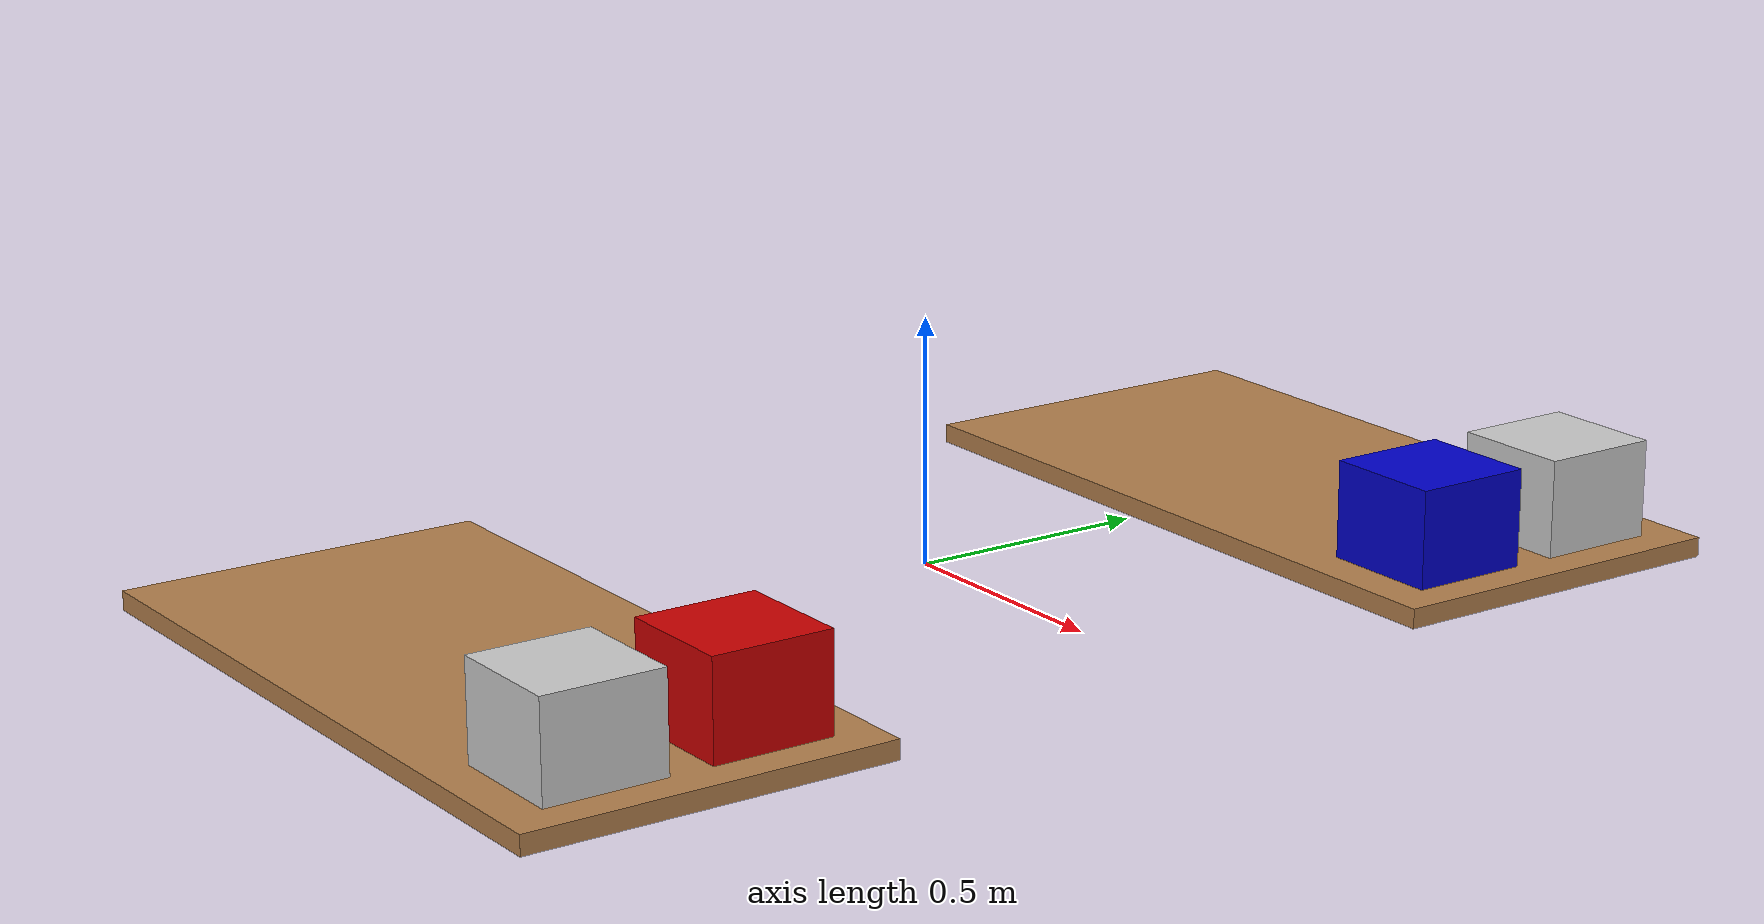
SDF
<?xml version="1.0" ?>
<sdf version="1.4">
  <world name="default">
    <include>
      <uri>model://sun</uri>
    </include>
    <gui>
        <camera name="user_camera">
          <pose>2.5 -1.64 2.18 0 .6 2.5</pose>
        </camera>
    </gui>
    <scene>
      <ambient>0.4 0.4 0.4 1</ambient>
      <background>0.7 0.7 0.7 1</background>
      <!-- modified (shadows) to reduce computation effort, default : true -->
      <shadows>false</shadows>
    </scene>

    <physics type="ode">
      <real_time_update_rate>1000</real_time_update_rate>
      <max_step_size>0.001</max_step_size>
     </physics>

     <model name='tableright'>
       <pose> 0 .978 0 0 0 0</pose>
       <link name='tabletop'>
         <self_collide>0</self_collide>
         <enable_wind>0</enable_wind>
         <kinematic>0</kinematic>
         <pose>0 0 0 0 -0 0</pose>
         <gravity>1</gravity>
         <inertial>
           <mass>1</mass>
           <pose>0 0 0 0 -0 0</pose>
           <inertia>
             <ixx>1</ixx>
             <ixy>0</ixy>
             <ixz>0</ixz>
             <iyy>1</iyy>
             <iyz>0</iyz>
             <izz>1</izz>
           </inertia>
         </inertial>
         <visual name='scoring'>
           <pose>.562 -.169 .1 0 0 0</pose>
           <geometry>
             <box>
               <size>.25 .25 .2</size>
             </box>
           </geometry>
           <material>
             <ambient>0 0 .8 1</ambient>
             <diffuse>0 0 .8 1</diffuse>
             <specular>0 0 .8 1</specular>
             <emissive>0 0 0 0</emissive>
           </material>
           <transparency>0</transparency>
           <cast_shadows>1</cast_shadows>
         </visual>
         <visual name='static'>
           <pose>.562 .169 .1 0 0 0</pose>
           <geometry>
             <box>
               <size>.25 .25 .2</size>
             </box>
           </geometry>
           <material>
             <ambient>.8 .8 .8 1</ambient>
             <diffuse>.8 .8 .8 1</diffuse>
             <specular>.8 .8 .8 1</specular>
             <emissive>0 0 0 0</emissive>
           </material>
           <transparency>0</transparency>
           <cast_shadows>1</cast_shadows>
         </visual>         <visual name='visual1'>
           <pose>0 0 -.02 0 0 0</pose>
           <geometry>
             <box>
               <size>1.524 0.762 0.04</size>
             </box>
           </geometry>
           <material>
             <script>
               <uri>file://media/materials/scripts/gazebo.material</uri>
               <name>Gazebo/Wood</name>
             </script>
             <shader type='pixel'>
               <normal_map>__default__</normal_map>
             </shader>
           </material>
           <transparency>0</transparency>
           <cast_shadows>1</cast_shadows>
         </visual>
         <collision name='surface'>
           <laser_retro>0</laser_retro>
           <max_contacts>10</max_contacts>
           <pose>0 0 -.02 0 0 0</pose>
           <geometry>
             <box>
               <size>1.524 0.762 0.04</size>
             </box>
           </geometry>
           <surface>
             <friction>
               <ode>
                 <mu>0.6</mu>
                 <mu2>0.6</mu2>
                 <fdir1>0 0 0</fdir1>
                 <slip1>0</slip1>
                 <slip2>0</slip2>
               </ode>
               <torsional>
                 <coefficient>1</coefficient>
                 <patch_radius>0</patch_radius>
                 <surface_radius>0</surface_radius>
                 <use_patch_radius>1</use_patch_radius>
                 <ode>
                   <slip>0</slip>
                 </ode>
               </torsional>
             </friction>
             <bounce>
               <restitution_coefficient>0</restitution_coefficient>
               <threshold>1e+06</threshold>
             </bounce>
             <contact>
               <collide_without_contact>0</collide_without_contact>
               <collide_without_contact_bitmask>1</collide_without_contact_bitmask>
               <collide_bitmask>1</collide_bitmask>
               <ode>
                 <soft_cfm>0</soft_cfm>
                 <soft_erp>0.2</soft_erp>
                 <kp>1e+13</kp>
                 <kd>1</kd>
                 <max_vel>0.01</max_vel>
                 <min_depth>0</min_depth>
               </ode>
               <bullet>
                 <split_impulse>1</split_impulse>
                 <split_impulse_penetration_threshold>-0.01</split_impulse_penetration_threshold>
                 <soft_cfm>0</soft_cfm>
                 <soft_erp>0.2</soft_erp>
                 <kp>1e+13</kp>
                 <kd>1</kd>
               </bullet>
             </contact>
           </surface>
         </collision>

         <collision name='staticplatform'>
           <laser_retro>0</laser_retro>
           <max_contacts>10</max_contacts>
           <pose>.562 .169 .1 0 0 0</pose>
           <geometry>
             <box>
               <size>.25 .25 .2</size>
             </box>
           </geometry>
           <surface>
             <friction>
               <ode>
                 <mu>0.6</mu>
                 <mu2>0.6</mu2>
                 <fdir1>0 0 0</fdir1>
                 <slip1>0</slip1>
                 <slip2>0</slip2>
               </ode>
               <torsional>
                 <coefficient>1</coefficient>
                 <patch_radius>0</patch_radius>
                 <surface_radius>0</surface_radius>
                 <use_patch_radius>1</use_patch_radius>
                 <ode>
                   <slip>0</slip>
                 </ode>
               </torsional>
             </friction>
             <bounce>
               <restitution_coefficient>0</restitution_coefficient>
               <threshold>1e+06</threshold>
             </bounce>
             <contact>
               <collide_without_contact>0</collide_without_contact>
               <collide_without_contact_bitmask>1</collide_without_contact_bitmask>
               <collide_bitmask>1</collide_bitmask>
               <ode>
                 <soft_cfm>0</soft_cfm>
                 <soft_erp>0.2</soft_erp>
                 <kp>1e+13</kp>
                 <kd>1</kd>
                 <max_vel>0.01</max_vel>
                 <min_depth>0</min_depth>
               </ode>
               <bullet>
                 <split_impulse>1</split_impulse>
                 <split_impulse_penetration_threshold>-0.01</split_impulse_penetration_threshold>
                 <soft_cfm>0</soft_cfm>
                 <soft_erp>0.2</soft_erp>
                 <kp>1e+13</kp>
                 <kd>1</kd>
               </bullet>
             </contact>
           </surface>
         </collision>
         <collision name='scoringplatform'>
           <laser_retro>0</laser_retro>
           <max_contacts>10</max_contacts>
           <pose>.562 -.169 .1 0 0 0</pose>
           <geometry>
             <box>
               <size>.25 .25 .2</size>
             </box>
           </geometry>
           <surface>
             <friction>
               <ode>
                 <mu>0.6</mu>
                 <mu2>0.6</mu2>
                 <fdir1>0 0 0</fdir1>
                 <slip1>0</slip1>
                 <slip2>0</slip2>
               </ode>
               <torsional>
                 <coefficient>1</coefficient>
                 <patch_radius>0</patch_radius>
                 <surface_radius>0</surface_radius>
                 <use_patch_radius>1</use_patch_radius>
                 <ode>
                   <slip>0</slip>
                 </ode>
               </torsional>
             </friction>
             <bounce>
               <restitution_coefficient>0</restitution_coefficient>
               <threshold>1e+06</threshold>
             </bounce>
             <contact>
               <collide_without_contact>0</collide_without_contact>
               <collide_without_contact_bitmask>1</collide_without_contact_bitmask>
               <collide_bitmask>1</collide_bitmask>
               <ode>
                 <soft_cfm>0</soft_cfm>
                 <soft_erp>0.2</soft_erp>
                 <kp>1e+13</kp>
                 <kd>1</kd>
                 <max_vel>0.01</max_vel>
                 <min_depth>0</min_depth>
               </ode>
               <bullet>
                 <split_impulse>1</split_impulse>
                 <split_impulse_penetration_threshold>-0.01</split_impulse_penetration_threshold>
                 <soft_cfm>0</soft_cfm>
                 <soft_erp>0.2</soft_erp>
                 <kp>1e+13</kp>
                 <kd>1</kd>
               </bullet>
             </contact>
           </surface>
         </collision>
       </link>
       <static>1</static>
       <allow_auto_disable>1</allow_auto_disable>
     </model>

     <model name='tableleft'>
       <pose> 0 -.978 0 0 0 0</pose>
       <link name='link'>
         <self_collide>0</self_collide>
         <enable_wind>0</enable_wind>
         <kinematic>0</kinematic>
         <pose>0 0 0 0 -0 0</pose>
         <gravity>1</gravity>
         <inertial>
           <mass>1</mass>
           <pose>0 0 0 0 -0 0</pose>
           <inertia>
             <ixx>1</ixx>
             <ixy>0</ixy>
             <ixz>0</ixz>
             <iyy>1</iyy>
             <iyz>0</iyz>
             <izz>1</izz>
           </inertia>
         </inertial>
         <visual name='scoring'>
           <pose>.562 -.169 .1 0 0 0</pose>
           <geometry>
             <box>
               <size>.25 .25 .2</size>
             </box>
           </geometry>
           <material>
             <ambient>.8 .8 .8 1</ambient>
             <diffuse>.8 .8 .8 1</diffuse>
             <specular>.8 .8 .8 1</specular>
             <emissive>0 0 0 0</emissive>
           </material>
           <transparency>0</transparency>
           <cast_shadows>1</cast_shadows>
         </visual>
         <visual name='static'>
           <pose>.562 .169 .1 0 0 0</pose>
           <geometry>
             <box>
               <size>.25 .25 .2</size>
             </box>
           </geometry>
           <material>
             <ambient>.8 0 0 1</ambient>
             <diffuse>.8 0 0 1</diffuse>
             <specular>.8 0 0 1</specular>
             <emissive>0 0 0 0</emissive>
           </material>
           <transparency>0</transparency>
           <cast_shadows>1</cast_shadows>
         </visual>         <visual name='visual1'>
           <pose>0 0 -.02 0 0 0</pose>
           <geometry>
             <box>
               <size>1.524 0.762 0.04</size>
             </box>
           </geometry>
           <material>
             <script>
               <uri>file://media/materials/scripts/gazebo.material</uri>
               <name>Gazebo/Wood</name>
             </script>
             <shader type='pixel'>
               <normal_map>__default__</normal_map>
             </shader>
           </material>
           <transparency>0</transparency>
           <cast_shadows>1</cast_shadows>
         </visual>
         <collision name='surface'>
           <laser_retro>0</laser_retro>
           <max_contacts>10</max_contacts>
           <pose>0 0 -.02 0 0 0</pose>
           <geometry>
             <box>
               <size>1.524 0.762 0.04</size>
             </box>
           </geometry>
           <surface>
             <friction>
               <ode>
                 <mu>0.6</mu>
                 <mu2>0.6</mu2>
                 <fdir1>0 0 0</fdir1>
                 <slip1>0</slip1>
                 <slip2>0</slip2>
               </ode>
               <torsional>
                 <coefficient>1</coefficient>
                 <patch_radius>0</patch_radius>
                 <surface_radius>0</surface_radius>
                 <use_patch_radius>1</use_patch_radius>
                 <ode>
                   <slip>0</slip>
                 </ode>
               </torsional>
             </friction>
             <bounce>
               <restitution_coefficient>0</restitution_coefficient>
               <threshold>1e+06</threshold>
             </bounce>
             <contact>
               <collide_without_contact>0</collide_without_contact>
               <collide_without_contact_bitmask>1</collide_without_contact_bitmask>
               <collide_bitmask>1</collide_bitmask>
               <ode>
                 <soft_cfm>0</soft_cfm>
                 <soft_erp>0.2</soft_erp>
                 <kp>1e+13</kp>
                 <kd>1</kd>
                 <max_vel>0.01</max_vel>
                 <min_depth>0</min_depth>
               </ode>
               <bullet>
                 <split_impulse>1</split_impulse>
                 <split_impulse_penetration_threshold>-0.01</split_impulse_penetration_threshold>
                 <soft_cfm>0</soft_cfm>
                 <soft_erp>0.2</soft_erp>
                 <kp>1e+13</kp>
                 <kd>1</kd>
               </bullet>
             </contact>
           </surface>
         </collision>

         <collision name='staticplatform'>
           <laser_retro>0</laser_retro>
           <max_contacts>10</max_contacts>
           <pose>.562 .169 .1 0 0 0</pose>
           <geometry>
             <box>
               <size>.25 .25 .2</size>
             </box>
           </geometry>
           <surface>
             <friction>
               <ode>
                 <mu>0.6</mu>
                 <mu2>0.6</mu2>
                 <fdir1>0 0 0</fdir1>
                 <slip1>0</slip1>
                 <slip2>0</slip2>
               </ode>
               <torsional>
                 <coefficient>1</coefficient>
                 <patch_radius>0</patch_radius>
                 <surface_radius>0</surface_radius>
                 <use_patch_radius>1</use_patch_radius>
                 <ode>
                   <slip>0</slip>
                 </ode>
               </torsional>
             </friction>
             <bounce>
               <restitution_coefficient>0</restitution_coefficient>
               <threshold>1e+06</threshold>
             </bounce>
             <contact>
               <collide_without_contact>0</collide_without_contact>
               <collide_without_contact_bitmask>1</collide_without_contact_bitmask>
               <collide_bitmask>1</collide_bitmask>
               <ode>
                 <soft_cfm>0</soft_cfm>
                 <soft_erp>0.2</soft_erp>
                 <kp>1e+13</kp>
                 <kd>1</kd>
                 <max_vel>0.01</max_vel>
                 <min_depth>0</min_depth>
               </ode>
               <bullet>
                 <split_impulse>1</split_impulse>
                 <split_impulse_penetration_threshold>-0.01</split_impulse_penetration_threshold>
                 <soft_cfm>0</soft_cfm>
                 <soft_erp>0.2</soft_erp>
                 <kp>1e+13</kp>
                 <kd>1</kd>
               </bullet>
             </contact>
           </surface>
         </collision>
         <collision name='scoringplatform'>
           <laser_retro>0</laser_retro>
           <max_contacts>10</max_contacts>
           <pose>.562 -.169 .1 0 0 0</pose>
           <geometry>
             <box>
               <size>.25 .25 .2</size>
             </box>
           </geometry>
           <surface>
             <friction>
               <ode>
                 <mu>0.6</mu>
                 <mu2>0.6</mu2>
                 <fdir1>0 0 0</fdir1>
                 <slip1>0</slip1>
                 <slip2>0</slip2>
               </ode>
               <torsional>
                 <coefficient>1</coefficient>
                 <patch_radius>0</patch_radius>
                 <surface_radius>0</surface_radius>
                 <use_patch_radius>1</use_patch_radius>
                 <ode>
                   <slip>0</slip>
                 </ode>
               </torsional>
             </friction>
             <bounce>
               <restitution_coefficient>0</restitution_coefficient>
               <threshold>1e+06</threshold>
             </bounce>
             <contact>
               <collide_without_contact>0</collide_without_contact>
               <collide_without_contact_bitmask>1</collide_without_contact_bitmask>
               <collide_bitmask>1</collide_bitmask>
               <ode>
                 <soft_cfm>0</soft_cfm>
                 <soft_erp>0.2</soft_erp>
                 <kp>1e+13</kp>
                 <kd>1</kd>
                 <max_vel>0.01</max_vel>
                 <min_depth>0</min_depth>
               </ode>
               <bullet>
                 <split_impulse>1</split_impulse>
                 <split_impulse_penetration_threshold>-0.01</split_impulse_penetration_threshold>
                 <soft_cfm>0</soft_cfm>
                 <soft_erp>0.2</soft_erp>
                 <kp>1e+13</kp>
                 <kd>1</kd>
               </bullet>
             </contact>
           </surface>
         </collision>
       </link>
       <static>1</static>
       <allow_auto_disable>1</allow_auto_disable>
     </model>

  </world>
</sdf>
